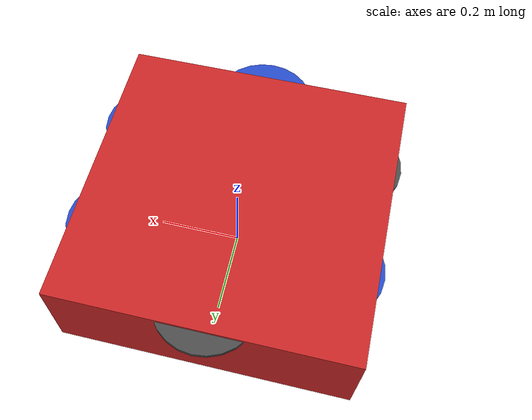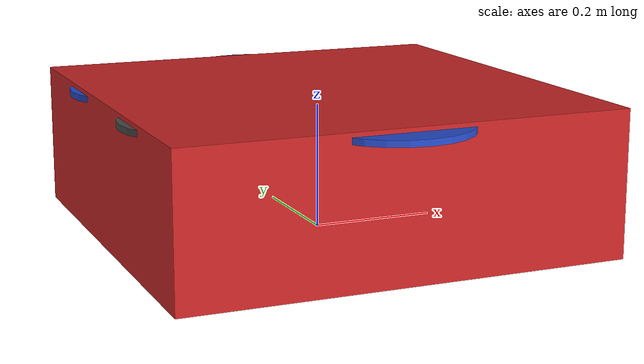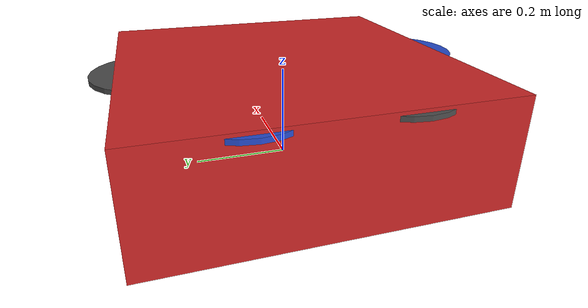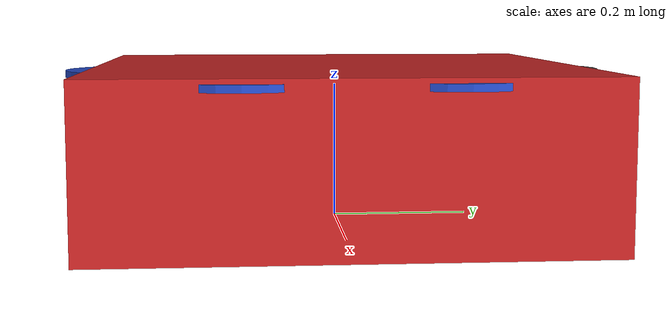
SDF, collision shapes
<?xml version='1.0'?>
<sdf version='1.5'>
  <model name='MBZIRColo_base'>
    <pose>0 0 0.194923 0 0 0</pose>
    <link name='base_link'>
      <velocity_decay>
        <linear>0.0</linear>
        <angular>0.0</angular>
      </velocity_decay>
      <inertial>
        <pose>0 0 0 0 0 0</pose>
        <mass>2.4</mass>
        <inertia>
          <ixx>0.0300</ixx>
          <ixy>0</ixy>
          <ixz>0</ixz>
          <iyy>0.0300</iyy>
          <iyz>0</iyz>
          <izz>0.045</izz>
        </inertia>
      </inertial>
      <collision name='base_link_collision'>
        <pose>0 0 -0.08 0 0 0</pose>
        <geometry>
          <box>
            <size>0.70 0.70 0.23</size>
          </box>
        </geometry>
        <surface>
          <contact>
            <ode>
              <max_vel>100.0</max_vel>
              <min_depth>0.001</min_depth>
            </ode>
          </contact>
          <friction>
            <ode>
              <mu>1.0</mu>
              <mu2>1.0</mu2>
            </ode>
          </friction>
        </surface>
      </collision>

      <visual name="base_link_collision_visual">
        <!--UNA SCATOLA VERDE FLUO TRASPARENTE CHE INDICA I LIMITI DELLA COLLISIONE DEL DRONE-->
        <pose>0 0 -0.08 0 0 0</pose>
        <geometry>
          <box>
            <size>0.47 0.47 0.23</size>
          </box>
        </geometry>
        <transparency>0.5 </transparency>
        <material>
          <script>
            <name>Gazebo/RedBright</name>
            <uri>file://media/materials/scripts/gazebo.material</uri>
          </script>
        </material>
      </visual>

      <visual name='base_link_visual'>
        <geometry>
          <sphere>
            <radius>.01</radius>
          </sphere>
        </geometry>
      </visual>

      <visual name='front_left_leg_visual'>
        <pose>0.123 0.22 -0.11 0 0 0</pose>
        <geometry>
          <cylinder>
            <radius>0.005</radius>
            <length>0.17</length>
          </cylinder>
        </geometry>
        <material>
          <script>
            <name>Gazebo/FlatBlack</name>
            <uri>file://media/materials/scripts/gazebo.material</uri>
          </script>
        </material>
      </visual>

      <visual name='front_right_leg_visual'>
        <pose>0.123 -0.22 -0.11 0 0 0</pose>
        <geometry>
          <cylinder>
            <radius>0.005</radius>
            <length>0.17</length>
          </cylinder>
        </geometry>
        <material>
          <script>
            <name>Gazebo/FlatBlack</name>
            <uri>file://media/materials/scripts/gazebo.material</uri>
          </script>
        </material>
      </visual>
      <visual name='rear_left_leg_visual'>
        <pose>-0.140 0.21 -0.11 0 0 0</pose>
        <geometry>
          <cylinder>
            <radius>0.005</radius>
            <length>0.17</length>
          </cylinder>
        </geometry>
        <material>
          <script>
            <name>Gazebo/FlatBlack</name>
            <uri>file://media/materials/scripts/gazebo.material</uri>
          </script>
        </material>
      </visual>
      <visual name='rear_right_leg_visual'>
        <pose>-0.140 -0.21 -0.11 0 0 0</pose>
        <geometry>
          <cylinder>
            <radius>0.005</radius>
            <length>0.17</length>
          </cylinder>
        </geometry>
        <material>
          <script>
            <name>Gazebo/FlatBlack</name>
            <uri>file://media/materials/scripts/gazebo.material</uri>
          </script>
        </material>
      </visual>

      <visual name='PROVA_front_leg_visual'>
        <pose>0.21 0 -0.11 0 0 0</pose>
        <geometry>
          <cylinder>
            <radius>0.005</radius>
            <length>0.17</length>
          </cylinder>
        </geometry>
        <material>
          <script>
            <name>Gazebo/FlatBlack</name>
            <uri>file://media/materials/scripts/gazebo.material</uri>
          </script>
        </material>
      </visual>
    </link>

    <link name='iris/ground_truth/odometry_sensorgt_link'>
      <pose>0 0 0 0 -0 0</pose>
      <inertial>
        <pose>0 0 0 0 -0 0</pose>
        <mass>0.15</mass>
        <inertia>
          <ixx>0.0001</ixx>
          <ixy>0</ixy>
          <ixz>0</ixz>
          <iyy>0.0002</iyy>
          <iyz>0</iyz>
          <izz>0.0002</izz>
        </inertia>
      </inertial>
    </link>

    <joint name='iris/ground_truth/odometry_sensorgt_joint' type='revolute'>
      <child>iris/ground_truth/odometry_sensorgt_link</child>
      <parent>base_link</parent>
      <axis>
        <xyz>0 0 1</xyz>
        <limit>
          <lower>0</lower>
          <upper>0</upper>
          <effort>0</effort>
          <velocity>0</velocity>
        </limit>
        <dynamics>
          <damping>1.0</damping>
        </dynamics>
        <use_parent_model_frame>1</use_parent_model_frame>
      </axis>
      <physics>
        <ode>
          <implicit_spring_damper>1</implicit_spring_damper>
        </ode>
      </physics>
    </joint>

    <link name='iris/imu_link'>
      <inertial>
        <pose>0 0 0 0 0 0</pose>
        <mass>0.15</mass>
        <inertia>
          <ixx>0.00001</ixx>
          <ixy>0</ixy>
          <ixz>0</ixz>
          <iyy>0.00002</iyy>
          <iyz>0</iyz>
          <izz>0.00002</izz>
        </inertia>
      </inertial>
      <sensor name="imu_sensor" type="imu">
        <pose>0 0 0 3.141593 0 0</pose>
        <always_on>1</always_on>
        <update_rate>1000.0</update_rate>
      </sensor>
    </link>

    <!--perche' mai l'imu non dovrebbe essere montato con un fixed joint sul drone-->
    <joint name='iris/imu_joint' type='revolute'>
      <child>iris/imu_link</child>
      <parent>base_link</parent>
      <axis>
        <xyz>0 0 1</xyz>
        <limit>
          <lower>0</lower>
          <upper>0</upper>
          <effort>0</effort>
          <velocity>0</velocity>
        </limit>
        <dynamics>
          <damping>1.0</damping>
        </dynamics>
        <use_parent_model_frame>1</use_parent_model_frame>
      </axis>
      <physics>
        <ode>
          <implicit_spring_damper>1</implicit_spring_damper>
        </ode>
      </physics>
    </joint>
    <link name='rotor_0'> <!-- DX -->
      <pose>0 -0.28 0.023 0 -0 0</pose>
      <inertial>
        <pose>0 0 0 0 -0 0</pose>
        <mass>0.025</mass>
        <inertia>
          <ixx>9.75e-06</ixx>
          <ixy>0</ixy>
          <ixz>0</ixz>
          <iyy>0.000166704</iyy>
          <iyz>0</iyz>
          <izz>0.000167604</izz>
        </inertia>
      </inertial>
      <collision name='rotor_0_collision'>
        <pose>0 0 0 0 -0 0</pose>
        <geometry>
          <cylinder>
            <length>0.01</length>
            <radius>0.12</radius>
          </cylinder>
        </geometry>
        <surface>
          <contact>
            <ode/>
          </contact>
          <friction>
            <ode/>
          </friction>
        </surface>
      </collision>
      <visual name='rotor_0_visual'>
        <pose>0 0 0 0 -0 0</pose>
        <geometry>
          <mesh>
            <scale>1 1 1</scale>
            <uri>model://iris_with_standoffs/meshes/iris_prop_ccw.dae</uri>
          </mesh>
        </geometry>
        <material>
          <script>
            <name>Gazebo/Blue</name>
            <uri>__default__</uri>
          </script>
        </material>
      </visual>
      <gravity>1</gravity>
      <velocity_decay/>
      <self_collide>0</self_collide>
    </link>

    <joint name='rotor_0_joint' type='revolute'>
      <child>rotor_0</child>
      <parent>base_link</parent>
      <axis>
        <xyz>0 0 1</xyz>
        <limit>
          <lower>-1e+16</lower>
          <upper>1e+16</upper>
        </limit>
        <dynamics>
          <damping>0.004</damping>
        </dynamics>
        <use_parent_model_frame>1</use_parent_model_frame>
      </axis>
      <physics>
        <ode>
          <implicit_spring_damper>1</implicit_spring_damper>
        </ode>
      </physics>
    </joint>

    <link name='rotor_1'>
      <pose>-0.0 0.28 0.023 0 -0 0</pose>
      <inertial>
        <pose>0 0 0 0 -0 0</pose>
        <mass>0.025</mass>
        <inertia>
          <ixx>9.75e-06</ixx>
          <ixy>0</ixy>
          <ixz>0</ixz>
          <iyy>0.000166704</iyy>
          <iyz>0</iyz>
          <izz>0.000167604</izz>
        </inertia>
      </inertial>
      <collision name='rotor_1_collision'>
        <pose>0 0 0 0 -0 0</pose>
        <geometry>
          <cylinder>
            <length>0.01</length>
            <radius>0.12</radius>
          </cylinder>
        </geometry>
        <surface>
          <contact>
            <ode/>
          </contact>
          <friction>
            <ode/>
          </friction>
        </surface>
      </collision>
      <visual name='rotor_1_visual'>
        <pose>0 0 0 0 -0 0</pose>
        <geometry>
          <mesh>
            <scale>1 1 1</scale>
            <uri>model://iris_with_standoffs/meshes/iris_prop_ccw.dae</uri>
          </mesh>
        </geometry>
        <material>
          <script>
            <name>Gazebo/DarkGrey</name>
            <uri>__default__</uri>
          </script>
        </material>
      </visual>
      <gravity>1</gravity>
      <velocity_decay/>
      <self_collide>0</self_collide>
    </link>
    <joint name='rotor_1_joint' type='revolute'>
      <child>rotor_1</child>
      <parent>base_link</parent>
      <axis>
        <xyz>0 0 1</xyz>
        <limit>
          <lower>-1e+16</lower>
          <upper>1e+16</upper>
        </limit>
        <dynamics>
          <damping>0.004</damping>
        </dynamics>
        <use_parent_model_frame>1</use_parent_model_frame>
      </axis>
      <physics>
        <ode>
          <implicit_spring_damper>1</implicit_spring_damper>
        </ode>
      </physics>
    </joint>

    <link name='rotor_2'> <!--DAVANTI SX -->
      <pose>0.2425 0.14 0.023 0 -0 0</pose>
      <inertial>
        <pose>0 0 0 0 -0 0</pose>
        <mass>0.025</mass>
        <inertia>
          <ixx>9.75e-06</ixx>
          <ixy>0</ixy>
          <ixz>0</ixz>
          <iyy>0.000166704</iyy>
          <iyz>0</iyz>
          <izz>0.000167604</izz>
        </inertia>
      </inertial>
      <collision name='rotor_2_collision'>
        <pose>0 0 0 0 -0 0</pose>
        <geometry>
          <cylinder>
            <length>0.01</length>
            <radius>0.12</radius>
          </cylinder>
        </geometry>
        <surface>
          <contact>
            <ode/>
          </contact>
          <friction>
            <ode/>
          </friction>
        </surface>
      </collision>
      <visual name='rotor_2_visual'>
        <pose>0 0 0 0 -0 0</pose>
        <geometry>
          <mesh>
            <scale>1 1 1</scale>
            <uri>model://iris_with_standoffs/meshes/iris_prop_cw.dae</uri>
          </mesh>
        </geometry>
        <material>
          <script>
            <name>Gazebo/Blue</name>
            <uri>__default__</uri>
          </script>
        </material>
      </visual>
      <gravity>1</gravity>
      <velocity_decay/>
      <self_collide>0</self_collide>
    </link>
    <joint name='rotor_2_joint' type='revolute'>
      <child>rotor_2</child>
      <parent>base_link</parent>
      <axis>
        <xyz>0 0 1</xyz>
        <limit>
          <lower>-1e+16</lower>
          <upper>1e+16</upper>
        </limit>
        <dynamics>
          <damping>0.004</damping>
        </dynamics>
        <use_parent_model_frame>1</use_parent_model_frame>
      </axis>
      <physics>
        <ode>
          <implicit_spring_damper>1</implicit_spring_damper>
        </ode>
      </physics>
    </joint>

    <link name='rotor_3'> <!-- DIETRO DX-->
      <pose>-0.2425 -0.14 0.023 0 -0 0</pose>
      <inertial>
        <pose>0 0 0 0 -0 0</pose>
        <mass>0.025</mass>
        <inertia>
          <ixx>9.75e-06</ixx>
          <ixy>0</ixy>
          <ixz>0</ixz>
          <iyy>0.000166704</iyy>
          <iyz>0</iyz>
          <izz>0.000167604</izz>
        </inertia>
      </inertial>
      <collision name='rotor_3_collision'>
        <pose>0 0 0 0 -0 0</pose>
        <geometry>
          <cylinder>
            <length>0.01</length>
            <radius>0.12</radius>
          </cylinder>
        </geometry>
        <surface>
          <contact>
            <ode/>
          </contact>
          <friction>
            <ode/>
          </friction>
        </surface>
      </collision>
      <visual name='rotor_3_visual'>
        <pose>0 0 0 0 -0 0</pose>
        <geometry>
          <mesh>
            <scale>1 1 1</scale>
            <uri>model://iris_with_standoffs/meshes/iris_prop_cw.dae</uri>
          </mesh>
        </geometry>
        <material>
          <script>
            <name>Gazebo/DarkGrey</name>
            <uri>__default__</uri>
          </script>
        </material>
      </visual>
      <gravity>1</gravity>
      <velocity_decay/>
      <self_collide>0</self_collide>
    </link>
    <joint name='rotor_3_joint' type='revolute'>
      <child>rotor_3</child>
      <parent>base_link</parent>
      <axis>
        <xyz>0 0 1</xyz>
        <limit>
          <lower>-1e+16</lower>
          <upper>1e+16</upper>
        </limit>
        <dynamics>
          <damping>0.004</damping>
        </dynamics>
        <use_parent_model_frame>1</use_parent_model_frame>
      </axis>
      <physics>
        <ode>
          <implicit_spring_damper>1</implicit_spring_damper>
        </ode>
      </physics>
    </joint>

    <link name='rotor_4'> <!-- DAVANTI DX -->
      <pose>0.2425 -0.14 0.023 0 -0 0</pose>
      <inertial>
        <pose>0 0 0 0 -0 0</pose>
        <mass>0.025</mass>
        <inertia>
          <ixx>9.75e-06</ixx>
          <ixy>0</ixy>
          <ixz>0</ixz>
          <iyy>0.000166704</iyy>
          <iyz>0</iyz>
          <izz>0.000167604</izz>
        </inertia>
      </inertial>
      <collision name='rotor_4_collision'>
        <pose>0 0 0 0 -0 0</pose>
        <geometry>
          <cylinder>
            <length>0.01</length>
            <radius>0.12</radius>
          </cylinder>
        </geometry>
        <surface>
          <contact>
            <ode/>
          </contact>
          <friction>
            <ode/>
          </friction>
        </surface>
      </collision>
      <visual name='rotor_4_visual'>
        <pose>0 0 0 0 -0 0</pose>
        <geometry>
          <mesh>
            <scale>1 1 1</scale>
            <uri>model://iris_with_standoffs/meshes/iris_prop_ccw.dae</uri>
          </mesh>
        </geometry>
        <material>
          <script>
            <name>Gazebo/Blue</name>
            <uri>__default__</uri>
          </script>
        </material>
      </visual>
      <gravity>1</gravity>
      <velocity_decay/>
      <self_collide>0</self_collide>
    </link>

    <joint name='rotor_4_joint' type='revolute'>
      <child>rotor_4</child>
      <parent>base_link</parent>
      <axis>
        <xyz>0 0 1</xyz>
        <limit>
          <lower>-1e+16</lower>
          <upper>1e+16</upper>
        </limit>
        <dynamics>
          <damping>0.004</damping>
        </dynamics>
        <use_parent_model_frame>1</use_parent_model_frame>
      </axis>
      <physics>
        <ode>
          <implicit_spring_damper>1</implicit_spring_damper>
        </ode>
      </physics>
    </joint>

    <link name='rotor_5'> <!-- DIETRO SX -->
      <pose>-0.2425 0.14 0.023 0 -0 0</pose>
      <inertial>
        <pose>0 0 0 0 -0 0</pose>
        <mass>0.025</mass>
        <inertia>
          <ixx>9.75e-06</ixx>
          <ixy>0</ixy>
          <ixz>0</ixz>
          <iyy>0.000166704</iyy>
          <iyz>0</iyz>
          <izz>0.000167604</izz>
        </inertia>
      </inertial>
      <collision name='rotor_5_collision'>
        <pose>0 0 0 0 -0 0</pose>
        <geometry>
          <cylinder>
            <length>0.01</length>
            <radius>0.12</radius>
          </cylinder>
        </geometry>
        <surface>
          <contact>
            <ode/>
          </contact>
          <friction>
            <ode/>
          </friction>
        </surface>
      </collision>
      <visual name='rotor_5_visual'>
        <pose>0 0 0 0 -0 0</pose>
        <geometry>
          <mesh>
            <scale>1 1 1</scale>
            <uri>model://iris_with_standoffs/meshes/iris_prop_ccw.dae</uri>
          </mesh>
        </geometry>
        <material>
          <script>
            <name>Gazebo/Blue</name>
            <uri>__default__</uri>
          </script>
        </material>
      </visual>
      <gravity>1</gravity>
      <velocity_decay/>
      <self_collide>0</self_collide>
    </link>

    <joint name='rotor_5_joint' type='revolute'>
      <child>rotor_5</child>
      <parent>base_link</parent>
      <axis>
        <xyz>0 0 1</xyz>
        <limit>
          <lower>-1e+16</lower>
          <upper>1e+16</upper>
        </limit>
        <dynamics>
          <damping>0.004</damping>
        </dynamics>
        <use_parent_model_frame>1</use_parent_model_frame>
      </axis>
      <physics>
        <ode>
          <implicit_spring_damper>1</implicit_spring_damper>
        </ode>
      </physics>
    </joint>

    <static>0</static>
  </model>
</sdf>
